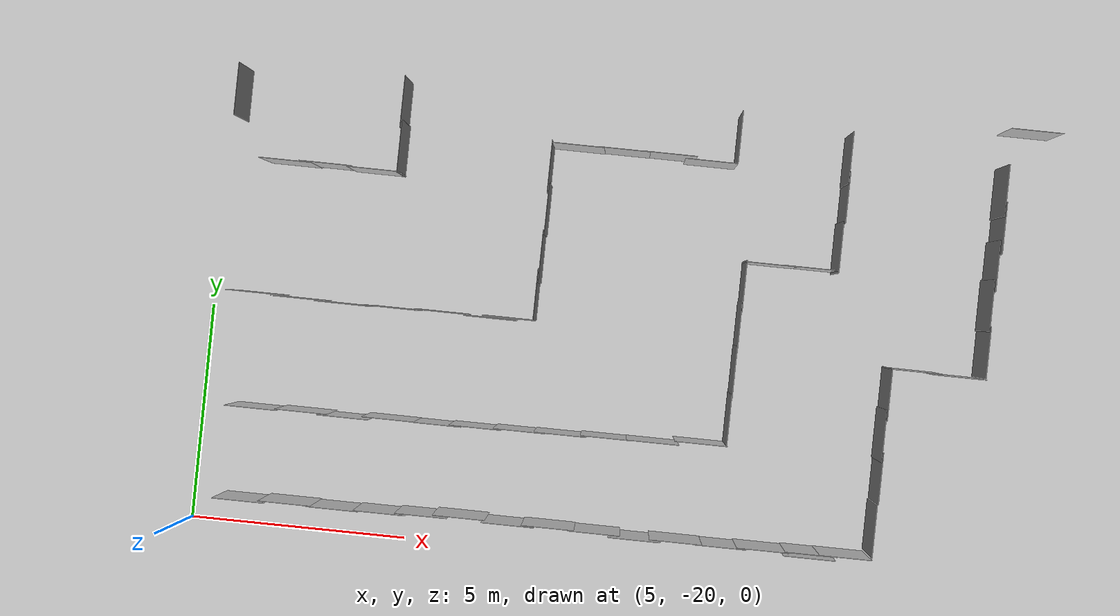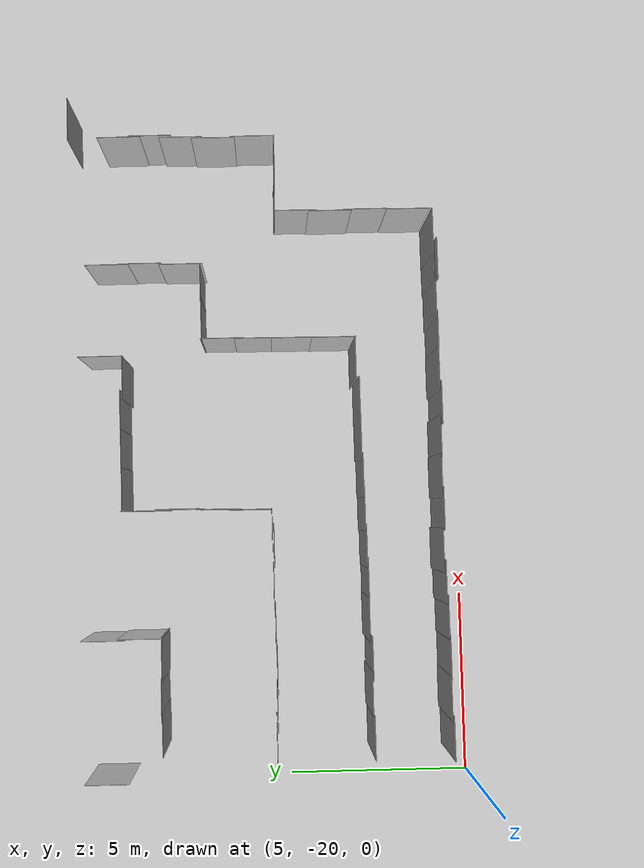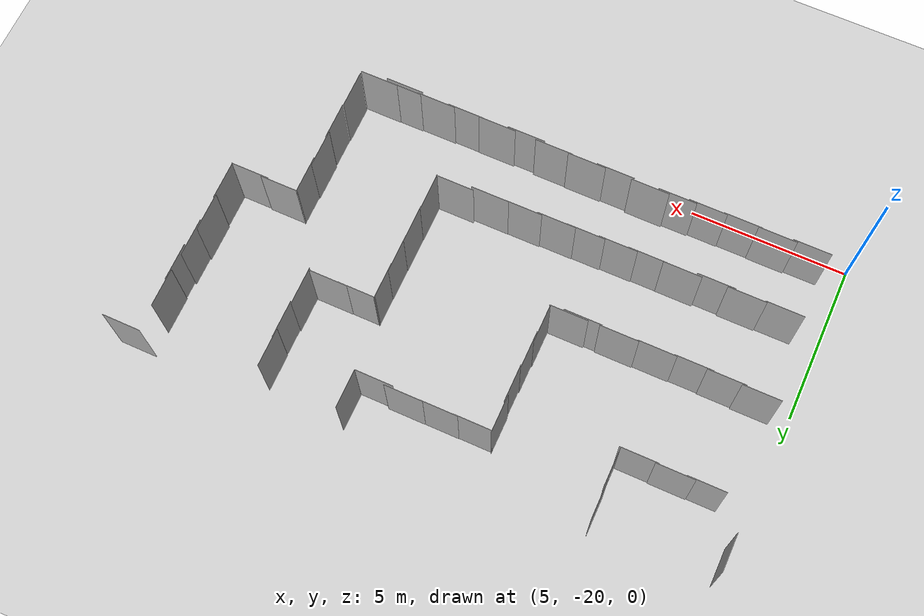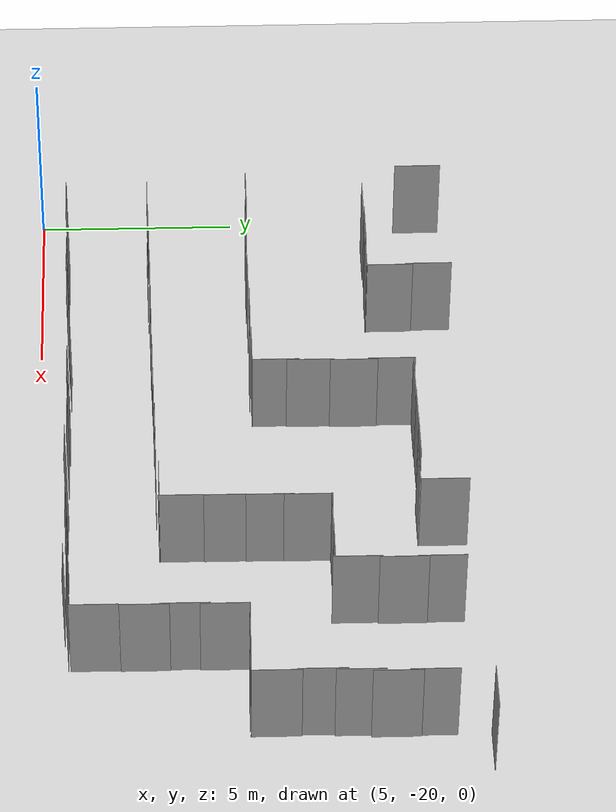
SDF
<sdf version="1.7">
 <world name="default">
  <model name="ground_plane">
   <static>1</static>
   <link name="link">
    <collision name="collision">
     <geometry><plane><normal>0 0 1</normal><size>100 100</size></plane></geometry>
     <surface><friction><ode><mu>100</mu><mu2>50</mu2></ode></friction></surface>
    </collision>
    <visual name="visual">
     <cast_shadows>0</cast_shadows>
     <geometry><plane><normal>0 0 1</normal><size>100 100</size></plane></geometry>
     <material>
      <script><uri>file://media/materials/scripts/gazebo.material</uri><name>Gazebo/Grey</name></script>
     </material>
    </visual>
   </link>
  </model>
  <model name="nist_maze_wall_240_clone_3_clone_5_clone_clone_0_clone_13_clone_6">
   <static>1</static>
   <link name="nist__maze_wall_240_link">
    <collision name="collision">
     <geometry>
      <mesh><uri>model://nist_maze_wall_240/meshes/nist_maze_wall_240.dae</uri><scale>1 1 1</scale></mesh>
     </geometry>
    </collision>
    <visual name="visual">
     <geometry>
      <mesh><uri>model://nist_maze_wall_240/meshes/nist_maze_wall_240.dae</uri><scale>1 1 1</scale></mesh>
     </geometry>
    </visual>
   </link>
   <pose>13.1909 -11.0798 0 0 -0 1.57</pose>
  </model>
  <model name="nist_maze_wall_240_clone_3_clone_5_clone_clone_0_clone_13_clone_11">
   <static>1</static>
   <link name="nist__maze_wall_240_link">
    <collision name="collision">
     <geometry>
      <mesh><uri>model://nist_maze_wall_240/meshes/nist_maze_wall_240.dae</uri><scale>1 1 1</scale></mesh>
     </geometry>
    </collision>
    <visual name="visual">
     <geometry>
      <mesh><uri>model://nist_maze_wall_240/meshes/nist_maze_wall_240.dae</uri><scale>1 1 1</scale></mesh>
     </geometry>
    </visual>
   </link>
   <pose>9.72766 -9.96759 0 0 -0 1.57</pose>
  </model>
  <model name="nist_maze_wall_240_clone_3_clone_5_clone_clone_0_clone_13_clone_12">
   <static>1</static>
   <link name="nist__maze_wall_240_link">
    <collision name="collision">
     <geometry>
      <mesh><uri>model://nist_maze_wall_240/meshes/nist_maze_wall_240.dae</uri><scale>1 1 1</scale></mesh>
     </geometry>
    </collision>
    <visual name="visual">
     <geometry>
      <mesh><uri>model://nist_maze_wall_240/meshes/nist_maze_wall_240.dae</uri><scale>1 1 1</scale></mesh>
     </geometry>
    </visual>
   </link>
   <pose>9.75983 -10.9685 0 0 -0 1.57</pose>
  </model>
  <model name="nist_maze_wall_240_clone_3_clone_6_clone">
   <static>1</static>
   <link name="nist__maze_wall_240_link">
    <collision name="collision">
     <geometry>
      <mesh><uri>model://nist_maze_wall_240/meshes/nist_maze_wall_240.dae</uri><scale>1 1 1</scale></mesh>
     </geometry>
    </collision>
    <visual name="visual">
     <geometry>
      <mesh><uri>model://nist_maze_wall_240/meshes/nist_maze_wall_240.dae</uri><scale>1 1 1</scale></mesh>
     </geometry>
    </visual>
   </link>
   <pose>13.1823 -11.1354 0 0 -0 0</pose>
  </model>
  <model name="nist_maze_wall_240_clone_3_clone_6_clone_0">
   <static>1</static>
   <link name="nist__maze_wall_240_link">
    <collision name="collision">
     <geometry>
      <mesh><uri>model://nist_maze_wall_240/meshes/nist_maze_wall_240.dae</uri><scale>1 1 1</scale></mesh>
     </geometry>
    </collision>
    <visual name="visual">
     <geometry>
      <mesh><uri>model://nist_maze_wall_240/meshes/nist_maze_wall_240.dae</uri><scale>1 1 1</scale></mesh>
     </geometry>
    </visual>
   </link>
   <pose>14.2297 -11.1251 0 0 -0 0</pose>
  </model>
  <model name="nist_maze_wall_240_clone_3_clone_6_clone_1">
   <static>1</static>
   <link name="nist__maze_wall_240_link">
    <collision name="collision">
     <geometry>
      <mesh><uri>model://nist_maze_wall_240/meshes/nist_maze_wall_240.dae</uri><scale>1 1 1</scale></mesh>
     </geometry>
    </collision>
    <visual name="visual">
     <geometry>
      <mesh><uri>model://nist_maze_wall_240/meshes/nist_maze_wall_240.dae</uri><scale>1 1 1</scale></mesh>
     </geometry>
    </visual>
   </link>
   <pose>15.3013 -11.1188 0 0 -0 0</pose>
  </model>
  <model name="nist_maze_wall_240_clone_3_clone_6_clone_3">
   <static>1</static>
   <link name="nist__maze_wall_240_link">
    <collision name="collision">
     <geometry>
      <mesh><uri>model://nist_maze_wall_240/meshes/nist_maze_wall_240.dae</uri><scale>1 1 1</scale></mesh>
     </geometry>
    </collision>
    <visual name="visual">
     <geometry>
      <mesh><uri>model://nist_maze_wall_240/meshes/nist_maze_wall_240.dae</uri><scale>1 1 1</scale></mesh>
     </geometry>
    </visual>
   </link>
   <pose>16.2365 -11.186 0 0 -0 0</pose>
  </model>
  <model name="nist_maze_wall_240_clone_3_clone_5_clone_clone_0_clone_13_clone_6_clone_3_clone">
   <static>1</static>
   <link name="nist__maze_wall_240_link">
    <collision name="collision">
     <geometry>
      <mesh><uri>model://nist_maze_wall_240/meshes/nist_maze_wall_240.dae</uri><scale>1 1 1</scale></mesh>
     </geometry>
    </collision>
    <visual name="visual">
     <geometry>
      <mesh><uri>model://nist_maze_wall_240/meshes/nist_maze_wall_240.dae</uri><scale>1 1 1</scale></mesh>
     </geometry>
    </visual>
   </link>
   <pose>17.4251 -9.9747 0 0 -0 1.57</pose>
  </model>
  <model name="nist_maze_wall_240_clone_3_clone_6_clone_clone">
   <static>1</static>
   <link name="nist__maze_wall_240_link">
    <collision name="collision">
     <geometry>
      <mesh><uri>model://nist_maze_wall_240/meshes/nist_maze_wall_240.dae</uri><scale>1 1 1</scale></mesh>
     </geometry>
    </collision>
    <visual name="visual">
     <geometry>
      <mesh><uri>model://nist_maze_wall_240/meshes/nist_maze_wall_240.dae</uri><scale>1 1 1</scale></mesh>
     </geometry>
    </visual>
   </link>
   <pose>11.578 -15.235 0 0 -0 0</pose>
  </model>
  <model name="nist_maze_wall_240_clone_3_clone_5_clone_clone_0_clone_13_clone_6_clone_4">
   <static>1</static>
   <link name="nist__maze_wall_240_link">
    <collision name="collision">
     <geometry>
      <mesh><uri>model://nist_maze_wall_240/meshes/nist_maze_wall_240.dae</uri><scale>1 1 1</scale></mesh>
     </geometry>
    </collision>
    <visual name="visual">
     <geometry>
      <mesh><uri>model://nist_maze_wall_240/meshes/nist_maze_wall_240.dae</uri><scale>1 1 1</scale></mesh>
     </geometry>
    </visual>
   </link>
   <pose>13.2209 -12.0284 0 0 -0 1.57</pose>
  </model>
  <model name="nist_maze_wall_240_clone_3_clone_5_clone_clone_0_clone_13_clone_6_clone_5">
   <static>1</static>
   <link name="nist__maze_wall_240_link">
    <collision name="collision">
     <geometry>
      <mesh><uri>model://nist_maze_wall_240/meshes/nist_maze_wall_240.dae</uri><scale>1 1 1</scale></mesh>
     </geometry>
    </collision>
    <visual name="visual">
     <geometry>
      <mesh><uri>model://nist_maze_wall_240/meshes/nist_maze_wall_240.dae</uri><scale>1 1 1</scale></mesh>
     </geometry>
    </visual>
   </link>
   <pose>13.1939 -13.1272 0 0 -0 1.57</pose>
  </model>
  <model name="nist_maze_wall_240_clone_3_clone_5_clone_clone_0_clone_13_clone_6_clone_6">
   <static>1</static>
   <link name="nist__maze_wall_240_link">
    <collision name="collision">
     <geometry>
      <mesh><uri>model://nist_maze_wall_240/meshes/nist_maze_wall_240.dae</uri><scale>1 1 1</scale></mesh>
     </geometry>
    </collision>
    <visual name="visual">
     <geometry>
      <mesh><uri>model://nist_maze_wall_240/meshes/nist_maze_wall_240.dae</uri><scale>1 1 1</scale></mesh>
     </geometry>
    </visual>
   </link>
   <pose>13.1664 -14.0031 0 0 -0 1.57</pose>
  </model>
  <model name="nist_maze_wall_240_clone_3_clone_6_clone_clone_clone">
   <static>1</static>
   <link name="nist__maze_wall_240_link">
    <collision name="collision">
     <geometry>
      <mesh><uri>model://nist_maze_wall_240/meshes/nist_maze_wall_240.dae</uri><scale>1 1 1</scale></mesh>
     </geometry>
    </collision>
    <visual name="visual">
     <geometry>
      <mesh><uri>model://nist_maze_wall_240/meshes/nist_maze_wall_240.dae</uri><scale>1 1 1</scale></mesh>
     </geometry>
    </visual>
   </link>
   <pose>11.9981 -15.1927 0 0 -0 0</pose>
  </model>
  <model name="nist_maze_wall_240_clone_3_clone_6_clone_clone_clone_0">
   <static>1</static>
   <link name="nist__maze_wall_240_link">
    <collision name="collision">
     <geometry>
      <mesh><uri>model://nist_maze_wall_240/meshes/nist_maze_wall_240.dae</uri><scale>1 1 1</scale></mesh>
     </geometry>
    </collision>
    <visual name="visual">
     <geometry>
      <mesh><uri>model://nist_maze_wall_240/meshes/nist_maze_wall_240.dae</uri><scale>1 1 1</scale></mesh>
     </geometry>
    </visual>
   </link>
   <pose>10.4496 -15.2072 0 0 -0 0</pose>
  </model>
  <model name="nist_maze_wall_240_clone_3_clone_6_clone_clone_clone_1">
   <static>1</static>
   <link name="nist__maze_wall_240_link">
    <collision name="collision">
     <geometry>
      <mesh><uri>model://nist_maze_wall_240/meshes/nist_maze_wall_240.dae</uri><scale>1 1 1</scale></mesh>
     </geometry>
    </collision>
    <visual name="visual">
     <geometry>
      <mesh><uri>model://nist_maze_wall_240/meshes/nist_maze_wall_240.dae</uri><scale>1 1 1</scale></mesh>
     </geometry>
    </visual>
   </link>
   <pose>9.2995 -15.2308 0 0 -0 0</pose>
  </model>
  <model name="nist_maze_wall_240_clone_3_clone_6_clone_clone_clone_2">
   <static>1</static>
   <link name="nist__maze_wall_240_link">
    <collision name="collision">
     <geometry>
      <mesh><uri>model://nist_maze_wall_240/meshes/nist_maze_wall_240.dae</uri><scale>1 1 1</scale></mesh>
     </geometry>
    </collision>
    <visual name="visual">
     <geometry>
      <mesh><uri>model://nist_maze_wall_240/meshes/nist_maze_wall_240.dae</uri><scale>1 1 1</scale></mesh>
     </geometry>
    </visual>
   </link>
   <pose>8.18976 -15.2507 0 0 -0 0</pose>
  </model>
  <model name="nist_maze_wall_240_clone_3_clone_6_clone_clone_clone_3">
   <static>1</static>
   <link name="nist__maze_wall_240_link">
    <collision name="collision">
     <geometry>
      <mesh><uri>model://nist_maze_wall_240/meshes/nist_maze_wall_240.dae</uri><scale>1 1 1</scale></mesh>
     </geometry>
    </collision>
    <visual name="visual">
     <geometry>
      <mesh><uri>model://nist_maze_wall_240/meshes/nist_maze_wall_240.dae</uri><scale>1 1 1</scale></mesh>
     </geometry>
    </visual>
   </link>
   <pose>7.19084 -15.2295 0 0 -0 0</pose>
  </model>
  <model name="nist_maze_wall_240_clone_3_clone_6_clone_clone_clone_4">
   <static>1</static>
   <link name="nist__maze_wall_240_link">
    <collision name="collision">
     <geometry>
      <mesh><uri>model://nist_maze_wall_240/meshes/nist_maze_wall_240.dae</uri><scale>1 1 1</scale></mesh>
     </geometry>
    </collision>
    <visual name="visual">
     <geometry>
      <mesh><uri>model://nist_maze_wall_240/meshes/nist_maze_wall_240.dae</uri><scale>1 1 1</scale></mesh>
     </geometry>
    </visual>
   </link>
   <pose>6.13492 -15.2001 0 0 -0 0</pose>
  </model>
  <model name="nist_maze_wall_240_clone_3_clone_6_clone_clone_clone_6">
   <static>1</static>
   <link name="nist__maze_wall_240_link">
    <collision name="collision">
     <geometry>
      <mesh><uri>model://nist_maze_wall_240/meshes/nist_maze_wall_240.dae</uri><scale>1 1 1</scale></mesh>
     </geometry>
    </collision>
    <visual name="visual">
     <geometry>
      <mesh><uri>model://nist_maze_wall_240/meshes/nist_maze_wall_240.dae</uri><scale>1 1 1</scale></mesh>
     </geometry>
    </visual>
   </link>
   <pose>8.60674 -12.1495 0 0 -0 0</pose>
  </model>
  <model name="nist_maze_wall_240_clone_3_clone_6_clone_clone_clone_7">
   <static>1</static>
   <link name="nist__maze_wall_240_link">
    <collision name="collision">
     <geometry>
      <mesh><uri>model://nist_maze_wall_240/meshes/nist_maze_wall_240.dae</uri><scale>1 1 1</scale></mesh>
     </geometry>
    </collision>
    <visual name="visual">
     <geometry>
      <mesh><uri>model://nist_maze_wall_240/meshes/nist_maze_wall_240.dae</uri><scale>1 1 1</scale></mesh>
     </geometry>
    </visual>
   </link>
   <pose>7.51916 -12.1269 0 0 -0 0</pose>
  </model>
  <model name="nist_maze_wall_240_clone_3_clone_6_clone_clone_clone_8">
   <static>1</static>
   <link name="nist__maze_wall_240_link">
    <collision name="collision">
     <geometry>
      <mesh><uri>model://nist_maze_wall_240/meshes/nist_maze_wall_240.dae</uri><scale>1 1 1</scale></mesh>
     </geometry>
    </collision>
    <visual name="visual">
     <geometry>
      <mesh><uri>model://nist_maze_wall_240/meshes/nist_maze_wall_240.dae</uri><scale>1 1 1</scale></mesh>
     </geometry>
    </visual>
   </link>
   <pose>6.60524 -12.1479 0 0 -0 0</pose>
  </model>
  <model name="nist_maze_wall_240_clone_3_clone_5_clone_clone_0_clone_13_clone_11_clone_0">
   <static>1</static>
   <link name="nist__maze_wall_240_link">
    <collision name="collision">
     <geometry>
      <mesh><uri>model://nist_maze_wall_240/meshes/nist_maze_wall_240.dae</uri><scale>1 1 1</scale></mesh>
     </geometry>
    </collision>
    <visual name="visual">
     <geometry>
      <mesh><uri>model://nist_maze_wall_240/meshes/nist_maze_wall_240.dae</uri><scale>1 1 1</scale></mesh>
     </geometry>
    </visual>
   </link>
   <pose>5.96209 -10.0532 0 0 -0 1.57</pose>
  </model>
  <model name="nist_maze_wall_240_clone_3_clone_6_clone_clone_clone_11_clone_6">
   <static>1</static>
   <link name="nist__maze_wall_240_link">
    <collision name="collision">
     <geometry>
      <mesh><uri>model://nist_maze_wall_240/meshes/nist_maze_wall_240.dae</uri><scale>1 1 1</scale></mesh>
     </geometry>
    </collision>
    <visual name="visual">
     <geometry>
      <mesh><uri>model://nist_maze_wall_240/meshes/nist_maze_wall_240.dae</uri><scale>1 1 1</scale></mesh>
     </geometry>
    </visual>
   </link>
   <pose>6.33896 -19.9197 0 0 -0 0</pose>
  </model>
  <model name="nist_maze_wall_240_clone_3_clone_6_clone_clone_clone_11_clone_7">
   <static>1</static>
   <link name="nist__maze_wall_240_link">
    <collision name="collision">
     <geometry>
      <mesh><uri>model://nist_maze_wall_240/meshes/nist_maze_wall_240.dae</uri><scale>1 1 1</scale></mesh>
     </geometry>
    </collision>
    <visual name="visual">
     <geometry>
      <mesh><uri>model://nist_maze_wall_240/meshes/nist_maze_wall_240.dae</uri><scale>1 1 1</scale></mesh>
     </geometry>
    </visual>
   </link>
   <pose>7.38339 -19.8797 0 0 -0 0</pose>
  </model>
  <model name="nist_maze_wall_240_clone_3_clone_6_clone_clone_clone_11_clone_8">
   <static>1</static>
   <link name="nist__maze_wall_240_link">
    <collision name="collision">
     <geometry>
      <mesh><uri>model://nist_maze_wall_240/meshes/nist_maze_wall_240.dae</uri><scale>1 1 1</scale></mesh>
     </geometry>
    </collision>
    <visual name="visual">
     <geometry>
      <mesh><uri>model://nist_maze_wall_240/meshes/nist_maze_wall_240.dae</uri><scale>1 1 1</scale></mesh>
     </geometry>
    </visual>
   </link>
   <pose>8.47561 -19.896 0 0 -0 0</pose>
  </model>
  <model name="nist_maze_wall_240_clone_3_clone_6_clone_clone_clone_11_clone_9">
   <static>1</static>
   <link name="nist__maze_wall_240_link">
    <collision name="collision">
     <geometry>
      <mesh><uri>model://nist_maze_wall_240/meshes/nist_maze_wall_240.dae</uri><scale>1 1 1</scale></mesh>
     </geometry>
    </collision>
    <visual name="visual">
     <geometry>
      <mesh><uri>model://nist_maze_wall_240/meshes/nist_maze_wall_240.dae</uri><scale>1 1 1</scale></mesh>
     </geometry>
    </visual>
   </link>
   <pose>9.54811 -19.8773 0 0 -0 0</pose>
  </model>
  <model name="nist_maze_wall_240_clone_3_clone_6_clone_clone_clone_11_clone_10">
   <static>1</static>
   <link name="nist__maze_wall_240_link">
    <collision name="collision">
     <geometry>
      <mesh><uri>model://nist_maze_wall_240/meshes/nist_maze_wall_240.dae</uri><scale>1 1 1</scale></mesh>
     </geometry>
    </collision>
    <visual name="visual">
     <geometry>
      <mesh><uri>model://nist_maze_wall_240/meshes/nist_maze_wall_240.dae</uri><scale>1 1 1</scale></mesh>
     </geometry>
    </visual>
   </link>
   <pose>10.4935 -19.8429 0 0 -0 0</pose>
  </model>
  <model name="nist_maze_wall_240_clone_3_clone_6_clone_clone_clone_11_clone_11">
   <static>1</static>
   <link name="nist__maze_wall_240_link">
    <collision name="collision">
     <geometry>
      <mesh><uri>model://nist_maze_wall_240/meshes/nist_maze_wall_240.dae</uri><scale>1 1 1</scale></mesh>
     </geometry>
    </collision>
    <visual name="visual">
     <geometry>
      <mesh><uri>model://nist_maze_wall_240/meshes/nist_maze_wall_240.dae</uri><scale>1 1 1</scale></mesh>
     </geometry>
    </visual>
   </link>
   <pose>11.3414 -19.7986 0 0 -0 0</pose>
  </model>
  <model name="nist_maze_wall_240_clone_3_clone_6_clone_clone_clone_11_clone_12">
   <static>1</static>
   <link name="nist__maze_wall_240_link">
    <collision name="collision">
     <geometry>
      <mesh><uri>model://nist_maze_wall_240/meshes/nist_maze_wall_240.dae</uri><scale>1 1 1</scale></mesh>
     </geometry>
    </collision>
    <visual name="visual">
     <geometry>
      <mesh><uri>model://nist_maze_wall_240/meshes/nist_maze_wall_240.dae</uri><scale>1 1 1</scale></mesh>
     </geometry>
    </visual>
   </link>
   <pose>12.4655 -19.8507 0 0 -0 0</pose>
  </model>
  <model name="nist_maze_wall_240_clone_3_clone_6_clone_clone_clone_11_clone_13">
   <static>1</static>
   <link name="nist__maze_wall_240_link">
    <collision name="collision">
     <geometry>
      <mesh><uri>model://nist_maze_wall_240/meshes/nist_maze_wall_240.dae</uri><scale>1 1 1</scale></mesh>
     </geometry>
    </collision>
    <visual name="visual">
     <geometry>
      <mesh><uri>model://nist_maze_wall_240/meshes/nist_maze_wall_240.dae</uri><scale>1 1 1</scale></mesh>
     </geometry>
    </visual>
   </link>
   <pose>13.3725 -19.8219 0 0 -0 0</pose>
  </model>
  <model name="nist_maze_wall_240_clone_3_clone_6_clone_clone_clone_11_clone_14">
   <static>1</static>
   <link name="nist__maze_wall_240_link">
    <collision name="collision">
     <geometry>
      <mesh><uri>model://nist_maze_wall_240/meshes/nist_maze_wall_240.dae</uri><scale>1 1 1</scale></mesh>
     </geometry>
    </collision>
    <visual name="visual">
     <geometry>
      <mesh><uri>model://nist_maze_wall_240/meshes/nist_maze_wall_240.dae</uri><scale>1 1 1</scale></mesh>
     </geometry>
    </visual>
   </link>
   <pose>14.4285 -19.838 0 0 -0 0</pose>
  </model>
  <model name="nist_maze_wall_240_clone_3_clone_6_clone_clone_clone_11_clone_15">
   <static>1</static>
   <link name="nist__maze_wall_240_link">
    <collision name="collision">
     <geometry>
      <mesh><uri>model://nist_maze_wall_240/meshes/nist_maze_wall_240.dae</uri><scale>1 1 1</scale></mesh>
     </geometry>
    </collision>
    <visual name="visual">
     <geometry>
      <mesh><uri>model://nist_maze_wall_240/meshes/nist_maze_wall_240.dae</uri><scale>1 1 1</scale></mesh>
     </geometry>
    </visual>
   </link>
   <pose>15.3526 -19.8924 0 0 -0 0</pose>
  </model>
  <model name="nist_maze_wall_240_clone_3_clone_6_clone_clone_clone_11_clone_16">
   <static>1</static>
   <link name="nist__maze_wall_240_link">
    <collision name="collision">
     <geometry>
      <mesh><uri>model://nist_maze_wall_240/meshes/nist_maze_wall_240.dae</uri><scale>1 1 1</scale></mesh>
     </geometry>
    </collision>
    <visual name="visual">
     <geometry>
      <mesh><uri>model://nist_maze_wall_240/meshes/nist_maze_wall_240.dae</uri><scale>1 1 1</scale></mesh>
     </geometry>
    </visual>
   </link>
   <pose>16.2909 -19.8484 0 0 -0 0</pose>
  </model>
  <model name="nist_maze_wall_240_clone_3_clone_6_clone_clone_clone_11_clone_17">
   <static>1</static>
   <link name="nist__maze_wall_240_link">
    <collision name="collision">
     <geometry>
      <mesh><uri>model://nist_maze_wall_240/meshes/nist_maze_wall_240.dae</uri><scale>1 1 1</scale></mesh>
     </geometry>
    </collision>
    <visual name="visual">
     <geometry>
      <mesh><uri>model://nist_maze_wall_240/meshes/nist_maze_wall_240.dae</uri><scale>1 1 1</scale></mesh>
     </geometry>
    </visual>
   </link>
   <pose>17.3071 -19.8567 0 0 -0 0</pose>
  </model>
  <model name="nist_maze_wall_240_clone_3_clone_6_clone_clone_clone_11_clone_18">
   <static>1</static>
   <link name="nist__maze_wall_240_link">
    <collision name="collision">
     <geometry>
      <mesh><uri>model://nist_maze_wall_240/meshes/nist_maze_wall_240.dae</uri><scale>1 1 1</scale></mesh>
     </geometry>
    </collision>
    <visual name="visual">
     <geometry>
      <mesh><uri>model://nist_maze_wall_240/meshes/nist_maze_wall_240.dae</uri><scale>1 1 1</scale></mesh>
     </geometry>
    </visual>
   </link>
   <pose>18.2755 -19.8314 0 0 -0 0</pose>
  </model>
  <model name="nist_maze_wall_240_clone_3_clone_6_clone_clone_clone_11_clone_19">
   <static>1</static>
   <link name="nist__maze_wall_240_link">
    <collision name="collision">
     <geometry>
      <mesh><uri>model://nist_maze_wall_240/meshes/nist_maze_wall_240.dae</uri><scale>1 1 1</scale></mesh>
     </geometry>
    </collision>
    <visual name="visual">
     <geometry>
      <mesh><uri>model://nist_maze_wall_240/meshes/nist_maze_wall_240.dae</uri><scale>1 1 1</scale></mesh>
     </geometry>
    </visual>
   </link>
   <pose>19.3473 -19.8999 0 0 -0 0</pose>
  </model>
  <model name="nist_maze_wall_240_clone_3_clone_6_clone_clone_clone_11_clone_20">
   <static>1</static>
   <link name="nist__maze_wall_240_link">
    <collision name="collision">
     <geometry>
      <mesh><uri>model://nist_maze_wall_240/meshes/nist_maze_wall_240.dae</uri><scale>1 1 1</scale></mesh>
     </geometry>
    </collision>
    <visual name="visual">
     <geometry>
      <mesh><uri>model://nist_maze_wall_240/meshes/nist_maze_wall_240.dae</uri><scale>1 1 1</scale></mesh>
     </geometry>
    </visual>
   </link>
   <pose>20.1651 -19.8028 0 0 -0 0</pose>
  </model>
  <model name="nist_maze_wall_240_clone_3_clone_6_clone_clone_clone_11_clone_21">
   <static>1</static>
   <link name="nist__maze_wall_240_link">
    <collision name="collision">
     <geometry>
      <mesh><uri>model://nist_maze_wall_240/meshes/nist_maze_wall_240.dae</uri><scale>1 1 1</scale></mesh>
     </geometry>
    </collision>
    <visual name="visual">
     <geometry>
      <mesh><uri>model://nist_maze_wall_240/meshes/nist_maze_wall_240.dae</uri><scale>1 1 1</scale></mesh>
     </geometry>
    </visual>
   </link>
   <pose>19.3849 -19.8099 0 0 -0 0</pose>
  </model>
  <model name="nist_maze_wall_240_clone_3_clone_6_clone_clone_clone_10_clone_4">
   <static>1</static>
   <link name="nist__maze_wall_240_link">
    <collision name="collision">
     <geometry>
      <mesh><uri>model://nist_maze_wall_240/meshes/nist_maze_wall_240.dae</uri><scale>1 1 1</scale></mesh>
     </geometry>
    </collision>
    <visual name="visual">
     <geometry>
      <mesh><uri>model://nist_maze_wall_240/meshes/nist_maze_wall_240.dae</uri><scale>1 1 1</scale></mesh>
     </geometry>
    </visual>
   </link>
   <pose>6.40646 -17.8057 0 0 -0 0</pose>
  </model>
  <model name="nist_maze_wall_240_clone_3_clone_6_clone_clone_clone_10_clone_5">
   <static>1</static>
   <link name="nist__maze_wall_240_link">
    <collision name="collision">
     <geometry>
      <mesh><uri>model://nist_maze_wall_240/meshes/nist_maze_wall_240.dae</uri><scale>1 1 1</scale></mesh>
     </geometry>
    </collision>
    <visual name="visual">
     <geometry>
      <mesh><uri>model://nist_maze_wall_240/meshes/nist_maze_wall_240.dae</uri><scale>1 1 1</scale></mesh>
     </geometry>
    </visual>
   </link>
   <pose>7.54331 -17.7772 0 0 -0 0</pose>
  </model>
  <model name="nist_maze_wall_240_clone_3_clone_6_clone_clone_clone_10_clone_6">
   <static>1</static>
   <link name="nist__maze_wall_240_link">
    <collision name="collision">
     <geometry>
      <mesh><uri>model://nist_maze_wall_240/meshes/nist_maze_wall_240.dae</uri><scale>1 1 1</scale></mesh>
     </geometry>
    </collision>
    <visual name="visual">
     <geometry>
      <mesh><uri>model://nist_maze_wall_240/meshes/nist_maze_wall_240.dae</uri><scale>1 1 1</scale></mesh>
     </geometry>
    </visual>
   </link>
   <pose>8.49443 -17.8076 0 0 -0 0</pose>
  </model>
  <model name="nist_maze_wall_240_clone_3_clone_6_clone_clone_clone_10_clone_7">
   <static>1</static>
   <link name="nist__maze_wall_240_link">
    <collision name="collision">
     <geometry>
      <mesh><uri>model://nist_maze_wall_240/meshes/nist_maze_wall_240.dae</uri><scale>1 1 1</scale></mesh>
     </geometry>
    </collision>
    <visual name="visual">
     <geometry>
      <mesh><uri>model://nist_maze_wall_240/meshes/nist_maze_wall_240.dae</uri><scale>1 1 1</scale></mesh>
     </geometry>
    </visual>
   </link>
   <pose>9.51914 -17.7483 0 0 -0 0</pose>
  </model>
  <model name="nist_maze_wall_240_clone_3_clone_6_clone_clone_clone_10_clone_8">
   <static>1</static>
   <link name="nist__maze_wall_240_link">
    <collision name="collision">
     <geometry>
      <mesh><uri>model://nist_maze_wall_240/meshes/nist_maze_wall_240.dae</uri><scale>1 1 1</scale></mesh>
     </geometry>
    </collision>
    <visual name="visual">
     <geometry>
      <mesh><uri>model://nist_maze_wall_240/meshes/nist_maze_wall_240.dae</uri><scale>1 1 1</scale></mesh>
     </geometry>
    </visual>
   </link>
   <pose>10.6084 -17.7544 0 0 -0 0</pose>
  </model>
  <model name="nist_maze_wall_240_clone_3_clone_6_clone_clone_clone_10_clone_9">
   <static>1</static>
   <link name="nist__maze_wall_240_link">
    <collision name="collision">
     <geometry>
      <mesh><uri>model://nist_maze_wall_240/meshes/nist_maze_wall_240.dae</uri><scale>1 1 1</scale></mesh>
     </geometry>
    </collision>
    <visual name="visual">
     <geometry>
      <mesh><uri>model://nist_maze_wall_240/meshes/nist_maze_wall_240.dae</uri><scale>1 1 1</scale></mesh>
     </geometry>
    </visual>
   </link>
   <pose>11.5142 -17.7331 0 0 -0 0</pose>
  </model>
  <model name="nist_maze_wall_240_clone_3_clone_6_clone_clone_clone_10_clone_10">
   <static>1</static>
   <link name="nist__maze_wall_240_link">
    <collision name="collision">
     <geometry>
      <mesh><uri>model://nist_maze_wall_240/meshes/nist_maze_wall_240.dae</uri><scale>1 1 1</scale></mesh>
     </geometry>
    </collision>
    <visual name="visual">
     <geometry>
      <mesh><uri>model://nist_maze_wall_240/meshes/nist_maze_wall_240.dae</uri><scale>1 1 1</scale></mesh>
     </geometry>
    </visual>
   </link>
   <pose>12.5178 -17.7087 0 0 -0 0</pose>
  </model>
  <model name="nist_maze_wall_240_clone_3_clone_6_clone_clone_clone_10_clone_11">
   <static>1</static>
   <link name="nist__maze_wall_240_link">
    <collision name="collision">
     <geometry>
      <mesh><uri>model://nist_maze_wall_240/meshes/nist_maze_wall_240.dae</uri><scale>1 1 1</scale></mesh>
     </geometry>
    </collision>
    <visual name="visual">
     <geometry>
      <mesh><uri>model://nist_maze_wall_240/meshes/nist_maze_wall_240.dae</uri><scale>1 1 1</scale></mesh>
     </geometry>
    </visual>
   </link>
   <pose>13.4395 -17.6946 0 0 -0 0</pose>
  </model>
  <model name="nist_maze_wall_240_clone_3_clone_6_clone_clone_clone_10_clone_12">
   <static>1</static>
   <link name="nist__maze_wall_240_link">
    <collision name="collision">
     <geometry>
      <mesh><uri>model://nist_maze_wall_240/meshes/nist_maze_wall_240.dae</uri><scale>1 1 1</scale></mesh>
     </geometry>
    </collision>
    <visual name="visual">
     <geometry>
      <mesh><uri>model://nist_maze_wall_240/meshes/nist_maze_wall_240.dae</uri><scale>1 1 1</scale></mesh>
     </geometry>
    </visual>
   </link>
   <pose>14.4939 -17.6655 0 0 -0 0</pose>
  </model>
  <model name="nist_maze_wall_240_clone_3_clone_6_clone_clone_clone_10_clone_13">
   <static>1</static>
   <link name="nist__maze_wall_240_link">
    <collision name="collision">
     <geometry>
      <mesh><uri>model://nist_maze_wall_240/meshes/nist_maze_wall_240.dae</uri><scale>1 1 1</scale></mesh>
     </geometry>
    </collision>
    <visual name="visual">
     <geometry>
      <mesh><uri>model://nist_maze_wall_240/meshes/nist_maze_wall_240.dae</uri><scale>1 1 1</scale></mesh>
     </geometry>
    </visual>
   </link>
   <pose>15.5467 -17.6586 0 0 -0 0</pose>
  </model>
  <model name="nist_maze_wall_240_clone_3_clone_6_clone_clone_clone_10_clone_14">
   <static>1</static>
   <link name="nist__maze_wall_240_link">
    <collision name="collision">
     <geometry>
      <mesh><uri>model://nist_maze_wall_240/meshes/nist_maze_wall_240.dae</uri><scale>1 1 1</scale></mesh>
     </geometry>
    </collision>
    <visual name="visual">
     <geometry>
      <mesh><uri>model://nist_maze_wall_240/meshes/nist_maze_wall_240.dae</uri><scale>1 1 1</scale></mesh>
     </geometry>
    </visual>
   </link>
   <pose>16.641 -17.5757 0 0 -0 0</pose>
  </model>
  <model name="nist_maze_wall_240_clone_3_clone_5_clone_clone_0_clone_13_clone_6_clone_3_clone_0_clone">
   <static>1</static>
   <link name="nist__maze_wall_240_link">
    <collision name="collision">
     <geometry>
      <mesh><uri>model://nist_maze_wall_240/meshes/nist_maze_wall_240.dae</uri><scale>1 1 1</scale></mesh>
     </geometry>
    </collision>
    <visual name="visual">
     <geometry>
      <mesh><uri>model://nist_maze_wall_240/meshes/nist_maze_wall_240.dae</uri><scale>1 1 1</scale></mesh>
     </geometry>
    </visual>
   </link>
   <pose>17.8204 -16.3993 0 0 -0 1.57</pose>
  </model>
  <model name="nist_maze_wall_240_clone_3_clone_5_clone_clone_0_clone_13_clone_6_clone_3_clone_0_clone_0">
   <static>1</static>
   <link name="nist__maze_wall_240_link">
    <collision name="collision">
     <geometry>
      <mesh><uri>model://nist_maze_wall_240/meshes/nist_maze_wall_240.dae</uri><scale>1 1 1</scale></mesh>
     </geometry>
    </collision>
    <visual name="visual">
     <geometry>
      <mesh><uri>model://nist_maze_wall_240/meshes/nist_maze_wall_240.dae</uri><scale>1 1 1</scale></mesh>
     </geometry>
    </visual>
   </link>
   <pose>17.8317 -15.289 0 0 -0 1.57</pose>
  </model>
  <model name="nist_maze_wall_240_clone_3_clone_5_clone_clone_0_clone_13_clone_6_clone_3_clone_0_clone_1">
   <static>1</static>
   <link name="nist__maze_wall_240_link">
    <collision name="collision">
     <geometry>
      <mesh><uri>model://nist_maze_wall_240/meshes/nist_maze_wall_240.dae</uri><scale>1 1 1</scale></mesh>
     </geometry>
    </collision>
    <visual name="visual">
     <geometry>
      <mesh><uri>model://nist_maze_wall_240/meshes/nist_maze_wall_240.dae</uri><scale>1 1 1</scale></mesh>
     </geometry>
    </visual>
   </link>
   <pose>17.8404 -14.2647 0 0 -0 1.57</pose>
  </model>
  <model name="nist_maze_wall_240_clone_3_clone_5_clone_clone_0_clone_13_clone_6_clone_3_clone_0_clone_2">
   <static>1</static>
   <link name="nist__maze_wall_240_link">
    <collision name="collision">
     <geometry>
      <mesh><uri>model://nist_maze_wall_240/meshes/nist_maze_wall_240.dae</uri><scale>1 1 1</scale></mesh>
     </geometry>
    </collision>
    <visual name="visual">
     <geometry>
      <mesh><uri>model://nist_maze_wall_240/meshes/nist_maze_wall_240.dae</uri><scale>1 1 1</scale></mesh>
     </geometry>
    </visual>
   </link>
   <pose>17.8562 -13.3327 0 0 -0 1.57</pose>
  </model>
  <model name="nist_maze_wall_240_clone_3_clone_6_clone_3_clone">
   <static>1</static>
   <link name="nist__maze_wall_240_link">
    <collision name="collision">
     <geometry>
      <mesh><uri>model://nist_maze_wall_240/meshes/nist_maze_wall_240.dae</uri><scale>1 1 1</scale></mesh>
     </geometry>
    </collision>
    <visual name="visual">
     <geometry>
      <mesh><uri>model://nist_maze_wall_240/meshes/nist_maze_wall_240.dae</uri><scale>1 1 1</scale></mesh>
     </geometry>
    </visual>
   </link>
   <pose>17.8288 -13.3685 0 0 -0 0</pose>
  </model>
  <model name="nist_maze_wall_240_clone_3_clone_6_clone_3_clone_0">
   <static>1</static>
   <link name="nist__maze_wall_240_link">
    <collision name="collision">
     <geometry>
      <mesh><uri>model://nist_maze_wall_240/meshes/nist_maze_wall_240.dae</uri><scale>1 1 1</scale></mesh>
     </geometry>
    </collision>
    <visual name="visual">
     <geometry>
      <mesh><uri>model://nist_maze_wall_240/meshes/nist_maze_wall_240.dae</uri><scale>1 1 1</scale></mesh>
     </geometry>
    </visual>
   </link>
   <pose>18.7333 -13.361 0 0 -0 0</pose>
  </model>
  <model name="nist_maze_wall_240_clone_3_clone_5_clone_clone_0_clone_13_clone_6_clone_3_clone_clone">
   <static>1</static>
   <link name="nist__maze_wall_240_link">
    <collision name="collision">
     <geometry>
      <mesh><uri>model://nist_maze_wall_240/meshes/nist_maze_wall_240.dae</uri><scale>1 1 1</scale></mesh>
     </geometry>
    </collision>
    <visual name="visual">
     <geometry>
      <mesh><uri>model://nist_maze_wall_240/meshes/nist_maze_wall_240.dae</uri><scale>1 1 1</scale></mesh>
     </geometry>
    </visual>
   </link>
   <pose>19.9424 -12.2267 0 0 -0 1.57</pose>
  </model>
  <model name="nist_maze_wall_240_clone_3_clone_5_clone_clone_0_clone_13_clone_6_clone_3_clone_clone_0">
   <static>1</static>
   <link name="nist__maze_wall_240_link">
    <collision name="collision">
     <geometry>
      <mesh><uri>model://nist_maze_wall_240/meshes/nist_maze_wall_240.dae</uri><scale>1 1 1</scale></mesh>
     </geometry>
    </collision>
    <visual name="visual">
     <geometry>
      <mesh><uri>model://nist_maze_wall_240/meshes/nist_maze_wall_240.dae</uri><scale>1 1 1</scale></mesh>
     </geometry>
    </visual>
   </link>
   <pose>19.9795 -11.099 0 0 -0 1.57</pose>
  </model>
  <model name="nist_maze_wall_240_clone_3_clone_5_clone_clone_0_clone_13_clone_6_clone_3_clone_clone_1">
   <static>1</static>
   <link name="nist__maze_wall_240_link">
    <collision name="collision">
     <geometry>
      <mesh><uri>model://nist_maze_wall_240/meshes/nist_maze_wall_240.dae</uri><scale>1 1 1</scale></mesh>
     </geometry>
    </collision>
    <visual name="visual">
     <geometry>
      <mesh><uri>model://nist_maze_wall_240/meshes/nist_maze_wall_240.dae</uri><scale>1 1 1</scale></mesh>
     </geometry>
    </visual>
   </link>
   <pose>19.9626 -10.1911 0 0 -0 1.57</pose>
  </model>
  <model name="nist_maze_wall_240_clone_3_clone_5_clone_clone_0_clone_13_clone_6_clone_3_clone_clone_3_clone_30">
   <static>1</static>
   <link name="nist__maze_wall_240_link">
    <collision name="collision">
     <geometry>
      <mesh><uri>model://nist_maze_wall_240/meshes/nist_maze_wall_240.dae</uri><scale>1 1 1</scale></mesh>
     </geometry>
    </collision>
    <visual name="visual">
     <geometry>
      <mesh><uri>model://nist_maze_wall_240/meshes/nist_maze_wall_240.dae</uri><scale>1 1 1</scale></mesh>
     </geometry>
    </visual>
   </link>
   <pose>21.3485 -18.5577 0 0 -0 1.57</pose>
  </model>
  <model name="nist_maze_wall_240_clone_3_clone_5_clone_clone_0_clone_13_clone_6_clone_3_clone_clone_3_clone_31">
   <static>1</static>
   <link name="nist__maze_wall_240_link">
    <collision name="collision">
     <geometry>
      <mesh><uri>model://nist_maze_wall_240/meshes/nist_maze_wall_240.dae</uri><scale>1 1 1</scale></mesh>
     </geometry>
    </collision>
    <visual name="visual">
     <geometry>
      <mesh><uri>model://nist_maze_wall_240/meshes/nist_maze_wall_240.dae</uri><scale>1 1 1</scale></mesh>
     </geometry>
    </visual>
   </link>
   <pose>21.3698 -17.3512 0 0 -0 1.57</pose>
  </model>
  <model name="nist_maze_wall_240_clone_3_clone_5_clone_clone_0_clone_13_clone_6_clone_3_clone_clone_3_clone_32">
   <static>1</static>
   <link name="nist__maze_wall_240_link">
    <collision name="collision">
     <geometry>
      <mesh><uri>model://nist_maze_wall_240/meshes/nist_maze_wall_240.dae</uri><scale>1 1 1</scale></mesh>
     </geometry>
    </collision>
    <visual name="visual">
     <geometry>
      <mesh><uri>model://nist_maze_wall_240/meshes/nist_maze_wall_240.dae</uri><scale>1 1 1</scale></mesh>
     </geometry>
    </visual>
   </link>
   <pose>21.3474 -16.3834 0 0 -0 1.57</pose>
  </model>
  <model name="nist_maze_wall_240_clone_3_clone_5_clone_clone_0_clone_13_clone_6_clone_3_clone_clone_3_clone_33">
   <static>1</static>
   <link name="nist__maze_wall_240_link">
    <collision name="collision">
     <geometry>
      <mesh><uri>model://nist_maze_wall_240/meshes/nist_maze_wall_240.dae</uri><scale>1 1 1</scale></mesh>
     </geometry>
    </collision>
    <visual name="visual">
     <geometry>
      <mesh><uri>model://nist_maze_wall_240/meshes/nist_maze_wall_240.dae</uri><scale>1 1 1</scale></mesh>
     </geometry>
    </visual>
   </link>
   <pose>21.3767 -15.4329 0 0 -0 1.57</pose>
  </model>
  <model name="nist_maze_wall_240_clone_3_clone_6_clone_3_clone_clone">
   <static>1</static>
   <link name="nist__maze_wall_240_link">
    <collision name="collision">
     <geometry>
      <mesh><uri>model://nist_maze_wall_240/meshes/nist_maze_wall_240.dae</uri><scale>1 1 1</scale></mesh>
     </geometry>
    </collision>
    <visual name="visual">
     <geometry>
      <mesh><uri>model://nist_maze_wall_240/meshes/nist_maze_wall_240.dae</uri><scale>1 1 1</scale></mesh>
     </geometry>
    </visual>
   </link>
   <pose>21.3532 -15.4526 0 0 -0 0</pose>
  </model>
  <model name="nist_maze_wall_240_clone_3_clone_6_clone_3_clone_clone_0">
   <static>1</static>
   <link name="nist__maze_wall_240_link">
    <collision name="collision">
     <geometry>
      <mesh><uri>model://nist_maze_wall_240/meshes/nist_maze_wall_240.dae</uri><scale>1 1 1</scale></mesh>
     </geometry>
    </collision>
    <visual name="visual">
     <geometry>
      <mesh><uri>model://nist_maze_wall_240/meshes/nist_maze_wall_240.dae</uri><scale>1 1 1</scale></mesh>
     </geometry>
    </visual>
   </link>
   <pose>22.3252 -15.4806 0 0 -0 0</pose>
  </model>
  <model name="nist_maze_wall_240_clone_3_clone_5_clone_clone_0_clone_13_clone_6_clone_3_clone_clone_0_clone">
   <static>1</static>
   <link name="nist__maze_wall_240_link">
    <collision name="collision">
     <geometry>
      <mesh><uri>model://nist_maze_wall_240/meshes/nist_maze_wall_240.dae</uri><scale>1 1 1</scale></mesh>
     </geometry>
    </collision>
    <visual name="visual">
     <geometry>
      <mesh><uri>model://nist_maze_wall_240/meshes/nist_maze_wall_240.dae</uri><scale>1 1 1</scale></mesh>
     </geometry>
    </visual>
   </link>
   <pose>23.5017 -14.2639 0 0 -0 1.57</pose>
  </model>
  <model name="nist_maze_wall_240_clone_3_clone_5_clone_clone_0_clone_13_clone_6_clone_3_clone_clone_0_clone_0">
   <static>1</static>
   <link name="nist__maze_wall_240_link">
    <collision name="collision">
     <geometry>
      <mesh><uri>model://nist_maze_wall_240/meshes/nist_maze_wall_240.dae</uri><scale>1 1 1</scale></mesh>
     </geometry>
    </collision>
    <visual name="visual">
     <geometry>
      <mesh><uri>model://nist_maze_wall_240/meshes/nist_maze_wall_240.dae</uri><scale>1 1 1</scale></mesh>
     </geometry>
    </visual>
   </link>
   <pose>23.4753 -13.1901 0 0 -0 1.57</pose>
  </model>
  <model name="nist_maze_wall_240_clone_3_clone_5_clone_clone_0_clone_13_clone_6_clone_3_clone_clone_0_clone_1">
   <static>1</static>
   <link name="nist__maze_wall_240_link">
    <collision name="collision">
     <geometry>
      <mesh><uri>model://nist_maze_wall_240/meshes/nist_maze_wall_240.dae</uri><scale>1 1 1</scale></mesh>
     </geometry>
    </collision>
    <visual name="visual">
     <geometry>
      <mesh><uri>model://nist_maze_wall_240/meshes/nist_maze_wall_240.dae</uri><scale>1 1 1</scale></mesh>
     </geometry>
    </visual>
   </link>
   <pose>23.5165 -12.291 0 0 -0 1.57</pose>
  </model>
  <model name="nist_maze_wall_240_clone_3_clone_5_clone_clone_0_clone_13_clone_6_clone_3_clone_clone_0_clone_2">
   <static>1</static>
   <link name="nist__maze_wall_240_link">
    <collision name="collision">
     <geometry>
      <mesh><uri>model://nist_maze_wall_240/meshes/nist_maze_wall_240.dae</uri><scale>1 1 1</scale></mesh>
     </geometry>
    </collision>
    <visual name="visual">
     <geometry>
      <mesh><uri>model://nist_maze_wall_240/meshes/nist_maze_wall_240.dae</uri><scale>1 1 1</scale></mesh>
     </geometry>
    </visual>
   </link>
   <pose>23.5766 -11.427 0 0 -0 1.57</pose>
  </model>
  <model name="nist_maze_wall_240_clone_3_clone_5_clone_clone_0_clone_13_clone_6_clone_3_clone_clone_0_clone_3">
   <static>1</static>
   <link name="nist__maze_wall_240_link">
    <collision name="collision">
     <geometry>
      <mesh><uri>model://nist_maze_wall_240/meshes/nist_maze_wall_240.dae</uri><scale>1 1 1</scale></mesh>
     </geometry>
    </collision>
    <visual name="visual">
     <geometry>
      <mesh><uri>model://nist_maze_wall_240/meshes/nist_maze_wall_240.dae</uri><scale>1 1 1</scale></mesh>
     </geometry>
    </visual>
   </link>
   <pose>23.5498 -10.5667 0 0 -0 1.57</pose>
  </model>
  <model name="nist_maze_wall_240_clone_3_clone_6_clone_2_clone_clone_5_clone_clone_clone">
   <static>1</static>
   <link name="nist__maze_wall_240_link">
    <collision name="collision">
     <geometry>
      <mesh><uri>model://nist_maze_wall_240/meshes/nist_maze_wall_240.dae</uri><scale>1 1 1</scale></mesh>
     </geometry>
    </collision>
    <visual name="visual">
     <geometry>
      <mesh><uri>model://nist_maze_wall_240/meshes/nist_maze_wall_240.dae</uri><scale>1 1 1</scale></mesh>
     </geometry>
    </visual>
   </link>
   <pose>23.5011 -9.75838 0 0 -0 0</pose>
  </model>
 </world>
</sdf>
